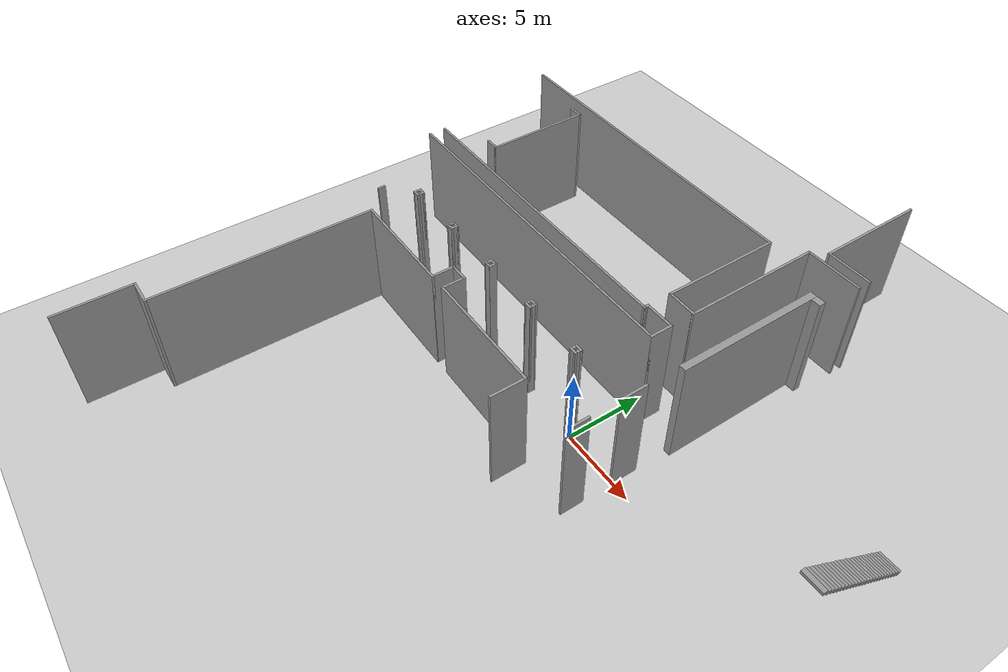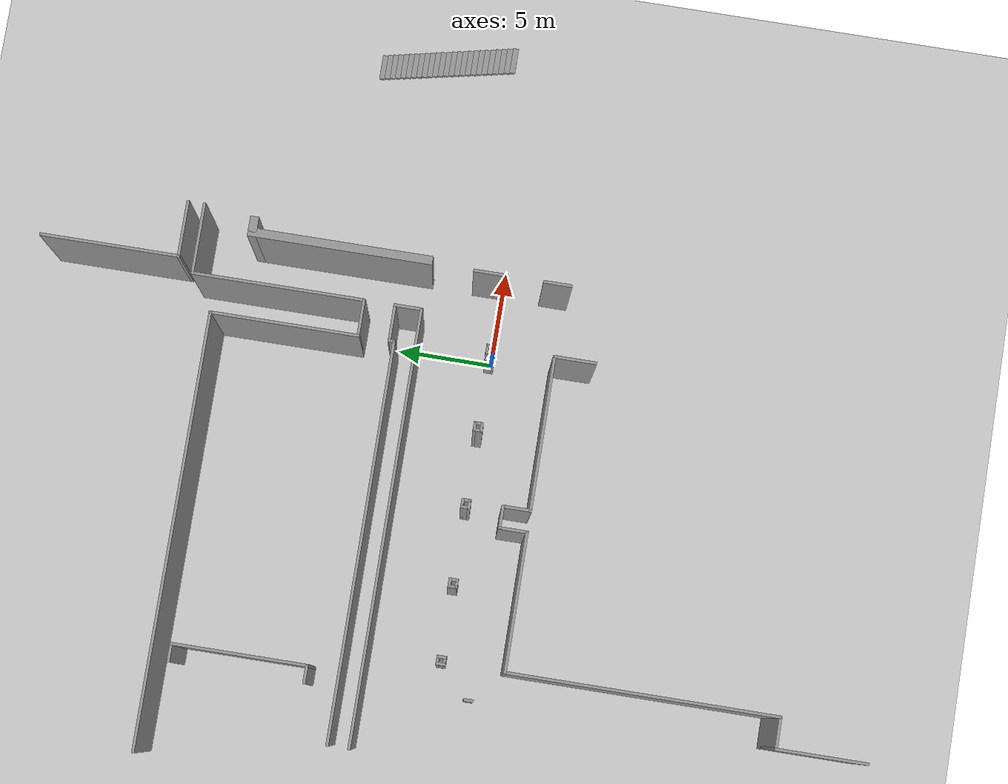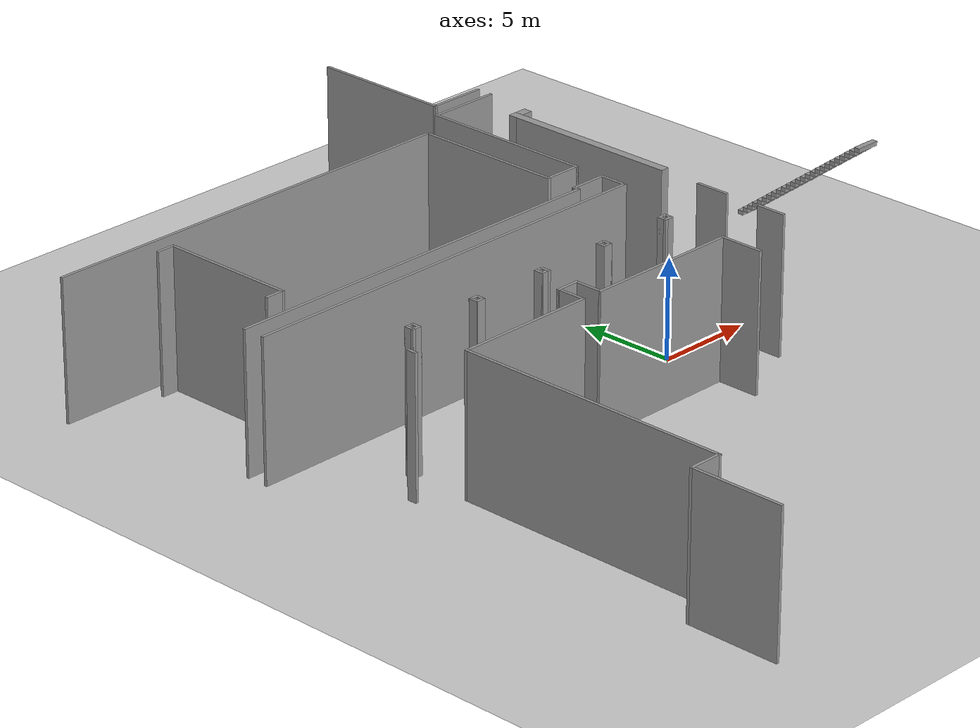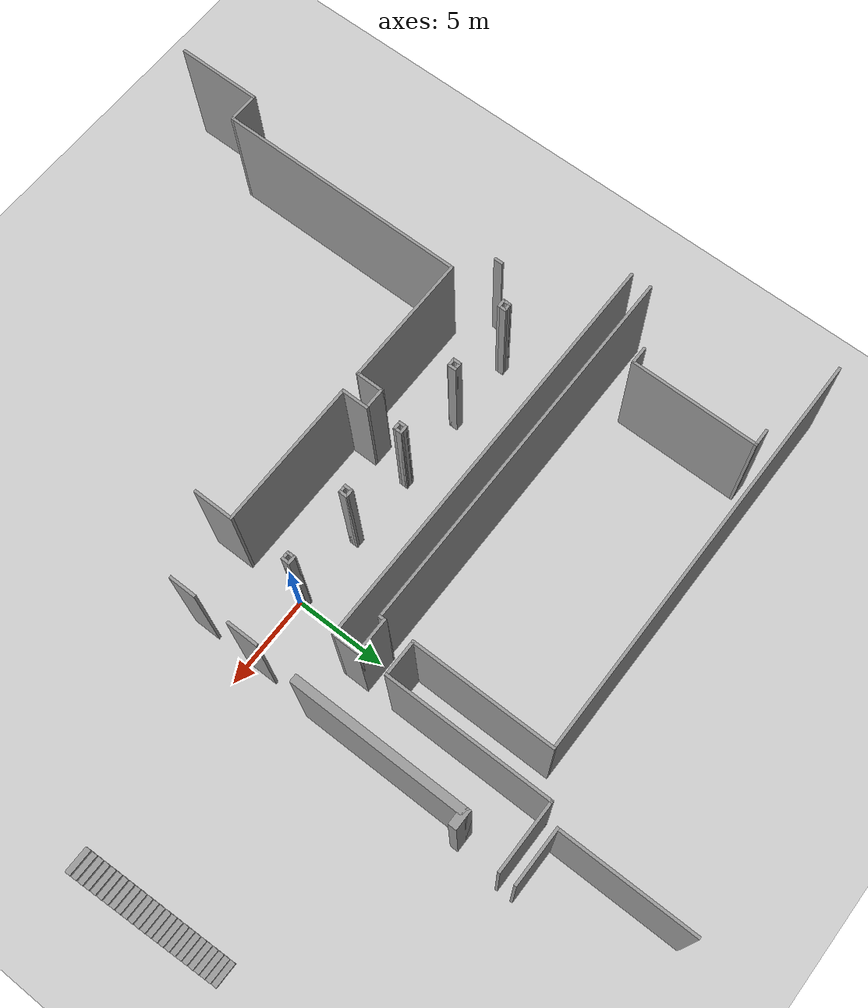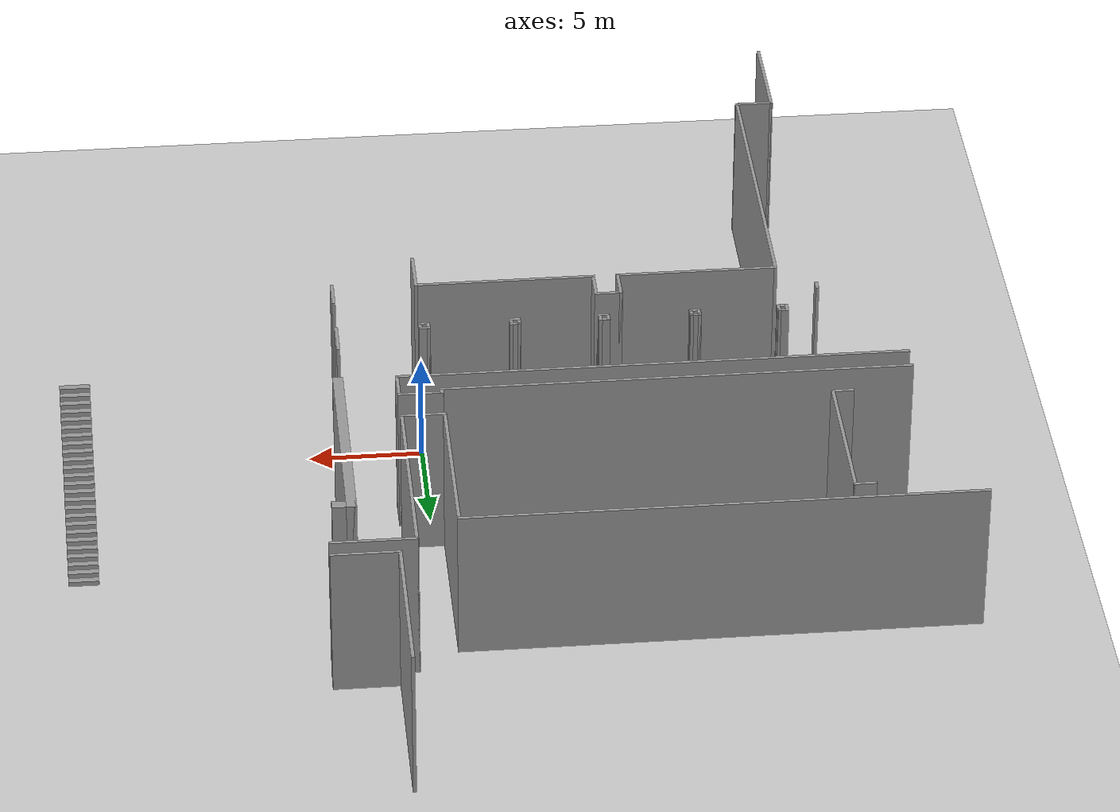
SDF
<sdf version="1.6">
 <world name="default">
  <model name="ground_plane">
   <static>1</static>
   <link name="link">
    <collision name="collision">
     <geometry><plane><normal>0 0 1</normal><size>100 100</size></plane></geometry>
     <surface>
      <contact><collide_bitmask>65535</collide_bitmask></contact>
      <friction><ode><mu>100</mu><mu2>50</mu2></ode></friction>
     </surface>
    </collision>
    <visual name="visual">
     <cast_shadows>0</cast_shadows>
     <geometry><plane><normal>0 0 1</normal><size>100 100</size></plane></geometry>
     <material>
      <script><uri>file://media/materials/scripts/gazebo.material</uri><name>Gazebo/Grey</name></script>
     </material>
    </visual>
   </link>
  </model>
  <model name="mmca">
   <pose>0.137385 4.31033 0 0 -0 0</pose>
   <link name="Stairs_1">
    <visual name="Stairs_1_Visual_0">
     <pose>15.1202 4.02391 0.11 0 -0 0</pose>
     <geometry><box><size>1.32 0.292 0.22</size></box></geometry>
     <material>
      <script><uri>file://media/materials/scripts/gazebo.material</uri><name>Gazebo/Grey</name></script>
      <ambient>1 1 1 1</ambient>
     </material>
     <meta><layer>0</layer></meta>
    </visual>
    <collision name="Stairs_1_Collision_0">
     <geometry><box><size>1.32 0.292 0.22</size></box></geometry>
     <pose>15.1202 4.02391 0.11 0 -0 0</pose>
    </collision>
    <visual name="Stairs_1_Visual_1">
     <pose>15.1202 3.73191 0.33 0 -0 0</pose>
     <geometry><box><size>1.32 0.292 0.22</size></box></geometry>
     <material>
      <script><uri>file://media/materials/scripts/gazebo.material</uri><name>Gazebo/Grey</name></script>
      <ambient>1 1 1 1</ambient>
     </material>
     <meta><layer>0</layer></meta>
    </visual>
    <collision name="Stairs_1_Collision_1">
     <geometry><box><size>1.32 0.292 0.22</size></box></geometry>
     <pose>15.1202 3.73191 0.33 0 -0 0</pose>
    </collision>
    <visual name="Stairs_1_Visual_2">
     <pose>15.1202 3.43991 0.55 0 -0 0</pose>
     <geometry><box><size>1.32 0.292 0.22</size></box></geometry>
     <material>
      <script><uri>file://media/materials/scripts/gazebo.material</uri><name>Gazebo/Grey</name></script>
      <ambient>1 1 1 1</ambient>
     </material>
     <meta><layer>0</layer></meta>
    </visual>
    <collision name="Stairs_1_Collision_2">
     <geometry><box><size>1.32 0.292 0.22</size></box></geometry>
     <pose>15.1202 3.43991 0.55 0 -0 0</pose>
    </collision>
    <visual name="Stairs_1_Visual_3">
     <pose>15.1202 3.14791 0.77 0 -0 0</pose>
     <geometry><box><size>1.32 0.292 0.22</size></box></geometry>
     <material>
      <script><uri>file://media/materials/scripts/gazebo.material</uri><name>Gazebo/Grey</name></script>
      <ambient>1 1 1 1</ambient>
     </material>
     <meta><layer>0</layer></meta>
    </visual>
    <collision name="Stairs_1_Collision_3">
     <geometry><box><size>1.32 0.292 0.22</size></box></geometry>
     <pose>15.1202 3.14791 0.77 0 -0 0</pose>
    </collision>
    <visual name="Stairs_1_Visual_4">
     <pose>15.1202 2.85591 0.99 0 -0 0</pose>
     <geometry><box><size>1.32 0.292 0.22</size></box></geometry>
     <material>
      <script><uri>file://media/materials/scripts/gazebo.material</uri><name>Gazebo/Grey</name></script>
      <ambient>1 1 1 1</ambient>
     </material>
     <meta><layer>0</layer></meta>
    </visual>
    <collision name="Stairs_1_Collision_4">
     <geometry><box><size>1.32 0.292 0.22</size></box></geometry>
     <pose>15.1202 2.85591 0.99 0 -0 0</pose>
    </collision>
    <visual name="Stairs_1_Visual_5">
     <pose>15.1202 2.56391 1.21 0 -0 0</pose>
     <geometry><box><size>1.32 0.292 0.22</size></box></geometry>
     <material>
      <script><uri>file://media/materials/scripts/gazebo.material</uri><name>Gazebo/Grey</name></script>
      <ambient>1 1 1 1</ambient>
     </material>
     <meta><layer>0</layer></meta>
    </visual>
    <collision name="Stairs_1_Collision_5">
     <geometry><box><size>1.32 0.292 0.22</size></box></geometry>
     <pose>15.1202 2.56391 1.21 0 -0 0</pose>
    </collision>
    <visual name="Stairs_1_Visual_6">
     <pose>15.1202 2.27191 1.43 0 -0 0</pose>
     <geometry><box><size>1.32 0.292 0.22</size></box></geometry>
     <material>
      <script><uri>file://media/materials/scripts/gazebo.material</uri><name>Gazebo/Grey</name></script>
      <ambient>1 1 1 1</ambient>
     </material>
     <meta><layer>0</layer></meta>
    </visual>
    <collision name="Stairs_1_Collision_6">
     <geometry><box><size>1.32 0.292 0.22</size></box></geometry>
     <pose>15.1202 2.27191 1.43 0 -0 0</pose>
    </collision>
    <visual name="Stairs_1_Visual_7">
     <pose>15.1202 1.97991 1.65 0 -0 0</pose>
     <geometry><box><size>1.32 0.292 0.22</size></box></geometry>
     <material>
      <script><uri>file://media/materials/scripts/gazebo.material</uri><name>Gazebo/Grey</name></script>
      <ambient>1 1 1 1</ambient>
     </material>
     <meta><layer>0</layer></meta>
    </visual>
    <collision name="Stairs_1_Collision_7">
     <geometry><box><size>1.32 0.292 0.22</size></box></geometry>
     <pose>15.1202 1.97991 1.65 0 -0 0</pose>
    </collision>
    <visual name="Stairs_1_Visual_8">
     <pose>15.1202 1.68791 1.87 0 -0 0</pose>
     <geometry><box><size>1.32 0.292 0.22</size></box></geometry>
     <material>
      <script><uri>file://media/materials/scripts/gazebo.material</uri><name>Gazebo/Grey</name></script>
      <ambient>1 1 1 1</ambient>
     </material>
     <meta><layer>0</layer></meta>
    </visual>
    <collision name="Stairs_1_Collision_8">
     <geometry><box><size>1.32 0.292 0.22</size></box></geometry>
     <pose>15.1202 1.68791 1.87 0 -0 0</pose>
    </collision>
    <visual name="Stairs_1_Visual_9">
     <pose>15.1202 1.39591 2.09 0 -0 0</pose>
     <geometry><box><size>1.32 0.292 0.22</size></box></geometry>
     <material>
      <script><uri>file://media/materials/scripts/gazebo.material</uri><name>Gazebo/Grey</name></script>
      <ambient>1 1 1 1</ambient>
     </material>
     <meta><layer>0</layer></meta>
    </visual>
    <collision name="Stairs_1_Collision_9">
     <geometry><box><size>1.32 0.292 0.22</size></box></geometry>
     <pose>15.1202 1.39591 2.09 0 -0 0</pose>
    </collision>
    <visual name="Stairs_1_Visual_10">
     <pose>15.1202 1.10391 2.31 0 -0 0</pose>
     <geometry><box><size>1.32 0.292 0.22</size></box></geometry>
     <material>
      <script><uri>file://media/materials/scripts/gazebo.material</uri><name>Gazebo/Grey</name></script>
      <ambient>1 1 1 1</ambient>
     </material>
     <meta><layer>0</layer></meta>
    </visual>
    <collision name="Stairs_1_Collision_10">
     <geometry><box><size>1.32 0.292 0.22</size></box></geometry>
     <pose>15.1202 1.10391 2.31 0 -0 0</pose>
    </collision>
    <visual name="Stairs_1_Visual_11">
     <pose>15.1202 0.811911 2.53 0 -0 0</pose>
     <geometry><box><size>1.32 0.292 0.22</size></box></geometry>
     <material>
      <script><uri>file://media/materials/scripts/gazebo.material</uri><name>Gazebo/Grey</name></script>
      <ambient>1 1 1 1</ambient>
     </material>
     <meta><layer>0</layer></meta>
    </visual>
    <collision name="Stairs_1_Collision_11">
     <geometry><box><size>1.32 0.292 0.22</size></box></geometry>
     <pose>15.1202 0.811911 2.53 0 -0 0</pose>
    </collision>
    <visual name="Stairs_1_Visual_12">
     <pose>15.1202 0.519911 2.75 0 -0 0</pose>
     <geometry><box><size>1.32 0.292 0.22</size></box></geometry>
     <material>
      <script><uri>file://media/materials/scripts/gazebo.material</uri><name>Gazebo/Grey</name></script>
      <ambient>1 1 1 1</ambient>
     </material>
     <meta><layer>0</layer></meta>
    </visual>
    <collision name="Stairs_1_Collision_12">
     <geometry><box><size>1.32 0.292 0.22</size></box></geometry>
     <pose>15.1202 0.519911 2.75 0 -0 0</pose>
    </collision>
    <visual name="Stairs_1_Visual_13">
     <pose>15.1202 0.227911 2.97 0 -0 0</pose>
     <geometry><box><size>1.32 0.292 0.22</size></box></geometry>
     <material>
      <script><uri>file://media/materials/scripts/gazebo.material</uri><name>Gazebo/Grey</name></script>
      <ambient>1 1 1 1</ambient>
     </material>
     <meta><layer>0</layer></meta>
    </visual>
    <collision name="Stairs_1_Collision_13">
     <geometry><box><size>1.32 0.292 0.22</size></box></geometry>
     <pose>15.1202 0.227911 2.97 0 -0 0</pose>
    </collision>
    <visual name="Stairs_1_Visual_14">
     <pose>15.1202 -0.064089 3.19 0 -0 0</pose>
     <geometry><box><size>1.32 0.292 0.22</size></box></geometry>
     <material>
      <script><uri>file://media/materials/scripts/gazebo.material</uri><name>Gazebo/Grey</name></script>
      <ambient>1 1 1 1</ambient>
     </material>
     <meta><layer>0</layer></meta>
    </visual>
    <collision name="Stairs_1_Collision_14">
     <geometry><box><size>1.32 0.292 0.22</size></box></geometry>
     <pose>15.1202 -0.064089 3.19 0 -0 0</pose>
    </collision>
    <visual name="Stairs_1_Visual_15">
     <pose>15.1202 -0.356089 3.41 0 -0 0</pose>
     <geometry><box><size>1.32 0.292 0.22</size></box></geometry>
     <material>
      <script><uri>file://media/materials/scripts/gazebo.material</uri><name>Gazebo/Grey</name></script>
      <ambient>1 1 1 1</ambient>
     </material>
     <meta><layer>0</layer></meta>
    </visual>
    <collision name="Stairs_1_Collision_15">
     <geometry><box><size>1.32 0.292 0.22</size></box></geometry>
     <pose>15.1202 -0.356089 3.41 0 -0 0</pose>
    </collision>
    <visual name="Stairs_1_Visual_16">
     <pose>15.1202 -0.648088 3.63 0 -0 0</pose>
     <geometry><box><size>1.32 0.292 0.22</size></box></geometry>
     <material>
      <script><uri>file://media/materials/scripts/gazebo.material</uri><name>Gazebo/Grey</name></script>
      <ambient>1 1 1 1</ambient>
     </material>
     <meta><layer>0</layer></meta>
    </visual>
    <collision name="Stairs_1_Collision_16">
     <geometry><box><size>1.32 0.292 0.22</size></box></geometry>
     <pose>15.1202 -0.648088 3.63 0 -0 0</pose>
    </collision>
    <visual name="Stairs_1_Visual_17">
     <pose>15.1202 -0.940089 3.85 0 -0 0</pose>
     <geometry><box><size>1.32 0.292 0.22</size></box></geometry>
     <material>
      <script><uri>file://media/materials/scripts/gazebo.material</uri><name>Gazebo/Grey</name></script>
      <ambient>1 1 1 1</ambient>
     </material>
     <meta><layer>0</layer></meta>
    </visual>
    <collision name="Stairs_1_Collision_17">
     <geometry><box><size>1.32 0.292 0.22</size></box></geometry>
     <pose>15.1202 -0.940089 3.85 0 -0 0</pose>
    </collision>
    <visual name="Stairs_1_Visual_18">
     <pose>15.1202 -1.23209 4.07 0 -0 0</pose>
     <geometry><box><size>1.32 0.292 0.22</size></box></geometry>
     <material>
      <script><uri>file://media/materials/scripts/gazebo.material</uri><name>Gazebo/Grey</name></script>
      <ambient>1 1 1 1</ambient>
     </material>
     <meta><layer>0</layer></meta>
    </visual>
    <collision name="Stairs_1_Collision_18">
     <geometry><box><size>1.32 0.292 0.22</size></box></geometry>
     <pose>15.1202 -1.23209 4.07 0 -0 0</pose>
    </collision>
    <visual name="Stairs_1_Visual_19">
     <pose>15.1202 -1.52409 4.29 0 -0 0</pose>
     <geometry><box><size>1.32 0.292 0.22</size></box></geometry>
     <material>
      <script><uri>file://media/materials/scripts/gazebo.material</uri><name>Gazebo/Grey</name></script>
      <ambient>1 1 1 1</ambient>
     </material>
     <meta><layer>0</layer></meta>
    </visual>
    <collision name="Stairs_1_Collision_19">
     <geometry><box><size>1.32 0.292 0.22</size></box></geometry>
     <pose>15.1202 -1.52409 4.29 0 -0 0</pose>
    </collision>
    <visual name="Stairs_1_Visual_20">
     <pose>15.1202 -1.81609 4.51 0 -0 0</pose>
     <geometry><box><size>1.32 0.292 0.22</size></box></geometry>
     <material>
      <script><uri>file://media/materials/scripts/gazebo.material</uri><name>Gazebo/Grey</name></script>
      <ambient>1 1 1 1</ambient>
     </material>
     <meta><layer>0</layer></meta>
    </visual>
    <collision name="Stairs_1_Collision_20">
     <geometry><box><size>1.32 0.292 0.22</size></box></geometry>
     <pose>15.1202 -1.81609 4.51 0 -0 0</pose>
    </collision>
    <visual name="Stairs_1_Visual_21">
     <pose>15.1202 -2.10809 4.73 0 -0 0</pose>
     <geometry><box><size>1.32 0.292 0.22</size></box></geometry>
     <material>
      <script><uri>file://media/materials/scripts/gazebo.material</uri><name>Gazebo/Grey</name></script>
      <ambient>1 1 1 1</ambient>
     </material>
     <meta><layer>0</layer></meta>
    </visual>
    <collision name="Stairs_1_Collision_21">
     <geometry><box><size>1.32 0.292 0.22</size></box></geometry>
     <pose>15.1202 -2.10809 4.73 0 -0 0</pose>
    </collision>
    <visual name="Stairs_1_Visual_22">
     <pose>15.1202 -2.40009 4.95 0 -0 0</pose>
     <geometry><box><size>1.32 0.292 0.22</size></box></geometry>
     <material>
      <script><uri>file://media/materials/scripts/gazebo.material</uri><name>Gazebo/Grey</name></script>
      <ambient>1 1 1 1</ambient>
     </material>
     <meta><layer>0</layer></meta>
    </visual>
    <collision name="Stairs_1_Collision_22">
     <geometry><box><size>1.32 0.292 0.22</size></box></geometry>
     <pose>15.1202 -2.40009 4.95 0 -0 0</pose>
    </collision>
    <visual name="Stairs_1_Visual_23">
     <pose>15.1202 -2.69209 5.17 0 -0 0</pose>
     <geometry><box><size>1.32 0.292 0.22</size></box></geometry>
     <material>
      <script><uri>file://media/materials/scripts/gazebo.material</uri><name>Gazebo/Grey</name></script>
      <ambient>1 1 1 1</ambient>
     </material>
     <meta><layer>0</layer></meta>
    </visual>
    <collision name="Stairs_1_Collision_23">
     <geometry><box><size>1.32 0.292 0.22</size></box></geometry>
     <pose>15.1202 -2.69209 5.17 0 -0 0</pose>
    </collision>
    <visual name="Stairs_1_Visual_24">
     <pose>15.1202 -2.98409 5.39 0 -0 0</pose>
     <geometry><box><size>1.32 0.292 0.22</size></box></geometry>
     <material>
      <script><uri>file://media/materials/scripts/gazebo.material</uri><name>Gazebo/Grey</name></script>
      <ambient>1 1 1 1</ambient>
     </material>
     <meta><layer>0</layer></meta>
    </visual>
    <collision name="Stairs_1_Collision_24">
     <geometry><box><size>1.32 0.292 0.22</size></box></geometry>
     <pose>15.1202 -2.98409 5.39 0 -0 0</pose>
    </collision>
   </link>
   <link name="Wall_119">
    <collision name="Wall_119_Collision">
     <geometry><box><size>1.75 0.15 7</size></box></geometry>
     <pose>0 0 3.5 0 -0 0</pose>
    </collision>
    <visual name="Wall_119_Visual">
     <pose>0 0 3.5 0 -0 0</pose>
     <geometry><box><size>1.75 0.15 7</size></box></geometry>
     <material>
      <script><uri>file://media/materials/scripts/gazebo.material</uri><name>Gazebo/Grey</name></script>
      <ambient>1 1 1 1</ambient>
     </material>
     <meta><layer>0</layer></meta>
    </visual>
    <pose>3.5775 -3.5445 0 0 -0 -1.5708</pose>
   </link>
   <link name="Wall_127">
    <collision name="Wall_127_Collision">
     <geometry><box><size>1.5 0.15 7</size></box></geometry>
     <pose>0 0 3.5 0 -0 0</pose>
    </collision>
    <visual name="Wall_127_Visual">
     <pose>0 0 3.5 0 -0 0</pose>
     <geometry><box><size>1.5 0.15 7</size></box></geometry>
     <material>
      <script><uri>file://media/materials/scripts/gazebo.material</uri><name>Gazebo/Grey</name></script>
      <ambient>1 1 1 1</ambient>
     </material>
     <meta><layer>0</layer></meta>
    </visual>
    <pose>3.5625 -7.0195 0 0 -0 1.5708</pose>
   </link>
   <link name="Wall_129">
    <collision name="Wall_129_Collision">
     <geometry><box><size>9.55 0.45 7</size></box></geometry>
     <pose>0 0 3.5 0 -0 0</pose>
    </collision>
    <visual name="Wall_129_Visual">
     <pose>0 0 3.5 0 -0 0</pose>
     <geometry><box><size>9.55 0.45 7</size></box></geometry>
     <material>
      <script><uri>file://media/materials/scripts/gazebo.material</uri><name>Gazebo/Grey</name></script>
      <ambient>1 1 1 1</ambient>
     </material>
     <meta><layer>0</layer></meta>
    </visual>
    <pose>3.7355 4.2315 0 0 -0 1.5708</pose>
   </link>
   <link name="Wall_131">
    <collision name="Wall_131_Collision">
     <geometry><box><size>1.05014 0.45 7</size></box></geometry>
     <pose>0 0 3.5 0 -0 0</pose>
    </collision>
    <visual name="Wall_131_Visual">
     <pose>0 0 3.5 0 -0 0</pose>
     <geometry><box><size>1.05014 0.45 7</size></box></geometry>
     <material>
      <script><uri>file://media/materials/scripts/gazebo.material</uri><name>Gazebo/Grey</name></script>
      <ambient>1 1 1 1</ambient>
     </material>
     <meta><layer>0</layer></meta>
    </visual>
    <pose>4.0355 8.7815 0 0 -0 0</pose>
   </link>
   <link name="Wall_182">
    <collision name="Wall_182_Collision">
     <geometry><box><size>9 0.15 7</size></box></geometry>
     <pose>0 0 3.5 0 -0 0</pose>
    </collision>
    <visual name="Wall_182_Visual">
     <pose>0 0 3.5 0 -0 0</pose>
     <geometry><box><size>9 0.15 7</size></box></geometry>
     <material>
      <script><uri>file://media/materials/scripts/gazebo.material</uri><name>Gazebo/Grey</name></script>
      <ambient>1 1 1 1</ambient>
     </material>
     <meta><layer>0</layer></meta>
    </visual>
    <pose>1.1735 7.0015 0 0 -0 1.5708</pose>
   </link>
   <link name="Wall_183">
    <collision name="Wall_183_Collision">
     <geometry><box><size>3.75 0.15 7</size></box></geometry>
     <pose>0 0 3.5 0 -0 0</pose>
    </collision>
    <visual name="Wall_183_Visual">
     <pose>0 0 3.5 0 -0 0</pose>
     <geometry><box><size>3.75 0.15 7</size></box></geometry>
     <material>
      <script><uri>file://media/materials/scripts/gazebo.material</uri><name>Gazebo/Grey</name></script>
      <ambient>1 1 1 1</ambient>
     </material>
     <meta><layer>0</layer></meta>
    </visual>
    <pose>2.9735 11.4265 0 0 -0 0</pose>
   </link>
   <link name="Wall_185">
    <collision name="Wall_185_Collision">
     <geometry><box><size>3 0.15 7</size></box></geometry>
     <pose>0 0 3.5 0 -0 0</pose>
    </collision>
    <visual name="Wall_185_Visual">
     <pose>0 0 3.5 0 -0 0</pose>
     <geometry><box><size>3 0.15 7</size></box></geometry>
     <material>
      <script><uri>file://media/materials/scripts/gazebo.material</uri><name>Gazebo/Grey</name></script>
      <ambient>1 1 1 1</ambient>
     </material>
     <meta><layer>0</layer></meta>
    </visual>
    <pose>3.3485 12.2765 0 0 -0 3.14159</pose>
   </link>
   <link name="Wall_186">
    <collision name="Wall_186_Collision">
     <geometry><box><size>7.25 0.15 7</size></box></geometry>
     <pose>0 0 3.5 0 -0 0</pose>
    </collision>
    <visual name="Wall_186_Visual">
     <pose>0 0 3.5 0 -0 0</pose>
     <geometry><box><size>7.25 0.15 7</size></box></geometry>
     <material>
      <script><uri>file://media/materials/scripts/gazebo.material</uri><name>Gazebo/Grey</name></script>
      <ambient>1 1 1 1</ambient>
     </material>
     <meta><layer>0</layer></meta>
    </visual>
    <pose>1.9235 15.8265 0 0 -0 1.5708</pose>
   </link>
   <link name="Wall_251">
    <collision name="Wall_251_Collision">
     <geometry><box><size>0.4 0.15 7</size></box></geometry>
     <pose>0 0 3.5 0 -0 0</pose>
    </collision>
    <visual name="Wall_251_Visual">
     <pose>0 0 3.5 0 -0 0</pose>
     <geometry><box><size>0.4 0.15 7</size></box></geometry>
     <material>
      <script><uri>file://media/materials/scripts/gazebo.material</uri><name>Gazebo/Grey</name></script>
      <ambient>1 1 1 1</ambient>
     </material>
     <meta><layer>0</layer></meta>
    </visual>
    <pose>-0.6765 0.851499 0 0 -0 -1.5708</pose>
   </link>
   <link name="Wall_255">
    <collision name="Wall_255_Collision">
     <geometry><box><size>20.65 0.15 7</size></box></geometry>
     <pose>0 0 3.5 0 -0 0</pose>
    </collision>
    <visual name="Wall_255_Visual">
     <pose>0 0 3.5 0 -0 0</pose>
     <geometry><box><size>20.65 0.15 7</size></box></geometry>
     <material>
      <script><uri>file://media/materials/scripts/gazebo.material</uri><name>Gazebo/Grey</name></script>
      <ambient>1 1 1 1</ambient>
     </material>
     <meta><layer>0</layer></meta>
    </visual>
    <pose>-10.9265 0.726499 0 0 -0 0</pose>
   </link>
   <link name="Wall_26">
    <collision name="Wall_26_Collision">
     <geometry><box><size>2.25 0.15 7</size></box></geometry>
     <pose>0 0 3.5 0 -0 0</pose>
    </collision>
    <visual name="Wall_26_Visual">
     <pose>0 0 3.5 0 -0 0</pose>
     <geometry><box><size>2.25 0.15 7</size></box></geometry>
     <material>
      <script><uri>file://media/materials/scripts/gazebo.material</uri><name>Gazebo/Grey</name></script>
      <ambient>1 1 1 1</ambient>
     </material>
     <meta><layer>0</layer></meta>
    </visual>
    <pose>-0.1585 -8.4765 0 0 -0 -1.5708</pose>
   </link>
   <link name="Wall_267">
    <collision name="Wall_267_Collision">
     <geometry><box><size>22.5 0.15 7</size></box></geometry>
     <pose>0 0 3.5 0 -0 0</pose>
    </collision>
    <visual name="Wall_267_Visual">
     <pose>0 0 3.5 0 -0 0</pose>
     <geometry><box><size>22.5 0.15 7</size></box></geometry>
     <material>
      <script><uri>file://media/materials/scripts/gazebo.material</uri><name>Gazebo/Grey</name></script>
      <ambient>1 1 1 1</ambient>
     </material>
     <meta><layer>0</layer></meta>
    </visual>
    <pose>-11.8515 10.1765 0 0 -0 0</pose>
   </link>
   <link name="Wall_268">
    <collision name="Wall_268_Collision">
     <geometry><box><size>7.75 0.15 7</size></box></geometry>
     <pose>0 0 3.5 0 -0 0</pose>
    </collision>
    <visual name="Wall_268_Visual">
     <pose>0 0 3.5 0 -0 0</pose>
     <geometry><box><size>7.75 0.15 7</size></box></geometry>
     <material>
      <script><uri>file://media/materials/scripts/gazebo.material</uri><name>Gazebo/Grey</name></script>
      <ambient>1 1 1 1</ambient>
     </material>
     <meta><layer>0</layer></meta>
    </visual>
    <pose>-0.6765 6.3765 0 0 -0 -1.5708</pose>
   </link>
   <link name="Wall_271">
    <collision name="Wall_271_Collision">
     <geometry><box><size>1 0.15 7</size></box></geometry>
     <pose>0 0 3.5 0 -0 0</pose>
    </collision>
    <visual name="Wall_271_Visual">
     <pose>0 0 3.5 0 -0 0</pose>
     <geometry><box><size>1 0.15 7</size></box></geometry>
     <material>
      <script><uri>file://media/materials/scripts/gazebo.material</uri><name>Gazebo/Grey</name></script>
      <ambient>1 1 1 1</ambient>
     </material>
     <meta><layer>0</layer></meta>
    </visual>
    <pose>-17.9065 2.3715 0 0 -0 0</pose>
   </link>
   <link name="Wall_272">
    <collision name="Wall_272_Collision">
     <geometry><box><size>7 0.15 7</size></box></geometry>
     <pose>0 0 3.5 0 -0 0</pose>
    </collision>
    <visual name="Wall_272_Visual">
     <pose>0 0 3.5 0 -0 0</pose>
     <geometry><box><size>7 0.15 7</size></box></geometry>
     <material>
      <script><uri>file://media/materials/scripts/gazebo.material</uri><name>Gazebo/Grey</name></script>
      <ambient>1 1 1 1</ambient>
     </material>
     <meta><layer>0</layer></meta>
    </visual>
    <pose>-17.4815 5.7965 0 0 -0 1.5708</pose>
   </link>
   <link name="Wall_273">
    <collision name="Wall_273_Collision">
     <geometry><box><size>1 0.15 7</size></box></geometry>
     <pose>0 0 3.5 0 -0 0</pose>
    </collision>
    <visual name="Wall_273_Visual">
     <pose>0 0 3.5 0 -0 0</pose>
     <geometry><box><size>1 0.15 7</size></box></geometry>
     <material>
      <script><uri>file://media/materials/scripts/gazebo.material</uri><name>Gazebo/Grey</name></script>
      <ambient>1 1 1 1</ambient>
     </material>
     <meta><layer>0</layer></meta>
    </visual>
    <pose>-17.9065 9.2215 0 0 -0 3.14159</pose>
   </link>
   <link name="Wall_275">
    <collision name="Wall_275_Collision">
     <geometry><box><size>1.5 0.15 7</size></box></geometry>
     <pose>0 0 3.5 0 -0 0</pose>
    </collision>
    <visual name="Wall_275_Visual">
     <pose>0 0 3.5 0 -0 0</pose>
     <geometry><box><size>1.5 0.15 7</size></box></geometry>
     <material>
      <script><uri>file://media/materials/scripts/gazebo.material</uri><name>Gazebo/Grey</name></script>
      <ambient>1 1 1 1</ambient>
     </material>
     <meta><layer>0</layer></meta>
    </visual>
    <pose>-9.1755 -6.7095 0 0 -0 1.5708</pose>
   </link>
   <link name="Wall_276">
    <collision name="Wall_276_Collision">
     <geometry><box><size>1.25 0.15 7</size></box></geometry>
     <pose>0 0 3.5 0 -0 0</pose>
    </collision>
    <visual name="Wall_276_Visual">
     <pose>0 0 3.5 0 -0 0</pose>
     <geometry><box><size>1.25 0.15 7</size></box></geometry>
     <material>
      <script><uri>file://media/materials/scripts/gazebo.material</uri><name>Gazebo/Grey</name></script>
      <ambient>1 1 1 1</ambient>
     </material>
     <meta><layer>0</layer></meta>
    </visual>
    <pose>-8.6255 -6.0345 0 0 -0 0</pose>
   </link>
   <link name="Wall_277">
    <collision name="Wall_277_Collision">
     <geometry><box><size>1.5 0.15 7</size></box></geometry>
     <pose>0 0 3.5 0 -0 0</pose>
    </collision>
    <visual name="Wall_277_Visual">
     <pose>0 0 3.5 0 -0 0</pose>
     <geometry><box><size>1.5 0.15 7</size></box></geometry>
     <material>
      <script><uri>file://media/materials/scripts/gazebo.material</uri><name>Gazebo/Grey</name></script>
      <ambient>1 1 1 1</ambient>
     </material>
     <meta><layer>0</layer></meta>
    </visual>
    <pose>-8.0755 -6.7095 0 0 -0 -1.5708</pose>
   </link>
   <link name="Wall_283">
    <collision name="Wall_283_Collision">
     <geometry><box><size>8.067 0.15 7</size></box></geometry>
     <pose>0 0 3.5 0 -0 0</pose>
    </collision>
    <visual name="Wall_283_Visual">
     <pose>0 0 3.5 0 -0 0</pose>
     <geometry><box><size>8.067 0.15 7</size></box></geometry>
     <material>
      <script><uri>file://media/materials/scripts/gazebo.material</uri><name>Gazebo/Grey</name></script>
      <ambient>1 1 1 1</ambient>
     </material>
     <meta><layer>0</layer></meta>
    </visual>
    <pose>-4.117 -7.4265 0 0 -0 3.14159</pose>
   </link>
   <link name="Wall_291">
    <collision name="Wall_291_Collision">
     <geometry><box><size>7.233 0.15 7</size></box></geometry>
     <pose>0 0 3.5 0 -0 0</pose>
    </collision>
    <visual name="Wall_291_Visual">
     <pose>0 0 3.5 0 -0 0</pose>
     <geometry><box><size>7.233 0.15 7</size></box></geometry>
     <material>
      <script><uri>file://media/materials/scripts/gazebo.material</uri><name>Gazebo/Grey</name></script>
      <ambient>1 1 1 1</ambient>
     </material>
     <meta><layer>0</layer></meta>
    </visual>
    <pose>-12.717 -7.4265 0 0 -0 0</pose>
   </link>
   <link name="Wall_335">
    <collision name="Wall_335_Collision">
     <geometry><box><size>0.5 0.15 7</size></box></geometry>
     <pose>0 0 3.5 0 -0 0</pose>
    </collision>
    <visual name="Wall_335_Visual">
     <pose>0 0 3.5 0 -0 0</pose>
     <geometry><box><size>0.5 0.15 7</size></box></geometry>
     <material>
      <script><uri>file://media/materials/scripts/gazebo.material</uri><name>Gazebo/Grey</name></script>
      <ambient>1 1 1 1</ambient>
     </material>
     <meta><layer>0</layer></meta>
    </visual>
    <pose>-17.9065 -5.8495 0 0 -0 -1.5708</pose>
   </link>
   <link name="Wall_339">
    <collision name="Wall_339_Collision">
     <geometry><box><size>0.5 0.15 7</size></box></geometry>
     <pose>0 0 3.5 0 -0 0</pose>
    </collision>
    <visual name="Wall_339_Visual">
     <pose>0 0 3.5 0 -0 0</pose>
     <geometry><box><size>0.5 0.15 7</size></box></geometry>
     <material>
      <script><uri>file://media/materials/scripts/gazebo.material</uri><name>Gazebo/Grey</name></script>
      <ambient>1 1 1 1</ambient>
     </material>
     <meta><layer>0</layer></meta>
    </visual>
    <pose>-16.3455 -4.1905 0 0 -0 1.5708</pose>
   </link>
   <link name="Wall_340">
    <collision name="Wall_340_Collision">
     <geometry><box><size>0.5 0.15 7</size></box></geometry>
     <pose>0 0 3.5 0 -0 0</pose>
    </collision>
    <visual name="Wall_340_Visual">
     <pose>0 0 3.5 0 -0 0</pose>
     <geometry><box><size>0.5 0.15 7</size></box></geometry>
     <material>
      <script><uri>file://media/materials/scripts/gazebo.material</uri><name>Gazebo/Grey</name></script>
      <ambient>1 1 1 1</ambient>
     </material>
     <meta><layer>0</layer></meta>
    </visual>
    <pose>-16.1705 -4.0155 0 0 -0 0</pose>
   </link>
   <link name="Wall_341">
    <collision name="Wall_341_Collision">
     <geometry><box><size>0.5 0.15 7</size></box></geometry>
     <pose>0 0 3.5 0 -0 0</pose>
    </collision>
    <visual name="Wall_341_Visual">
     <pose>0 0 3.5 0 -0 0</pose>
     <geometry><box><size>0.5 0.15 7</size></box></geometry>
     <material>
      <script><uri>file://media/materials/scripts/gazebo.material</uri><name>Gazebo/Grey</name></script>
      <ambient>1 1 1 1</ambient>
     </material>
     <meta><layer>0</layer></meta>
    </visual>
    <pose>-15.9955 -4.1905 0 0 -0 -1.5708</pose>
   </link>
   <link name="Wall_342">
    <collision name="Wall_342_Collision">
     <geometry><box><size>0.5 0.15 7</size></box></geometry>
     <pose>0 0 3.5 0 -0 0</pose>
    </collision>
    <visual name="Wall_342_Visual">
     <pose>0 0 3.5 0 -0 0</pose>
     <geometry><box><size>0.5 0.15 7</size></box></geometry>
     <material>
      <script><uri>file://media/materials/scripts/gazebo.material</uri><name>Gazebo/Grey</name></script>
      <ambient>1 1 1 1</ambient>
     </material>
     <meta><layer>0</layer></meta>
    </visual>
    <pose>-16.1705 -4.3655 0 0 -0 3.14159</pose>
   </link>
   <link name="Wall_344">
    <collision name="Wall_344_Collision">
     <geometry><box><size>0.5 0.15 7</size></box></geometry>
     <pose>0 0 3.5 0 -0 0</pose>
    </collision>
    <visual name="Wall_344_Visual">
     <pose>0 0 3.5 0 -0 0</pose>
     <geometry><box><size>0.5 0.15 7</size></box></geometry>
     <material>
      <script><uri>file://media/materials/scripts/gazebo.material</uri><name>Gazebo/Grey</name></script>
      <ambient>1 1 1 1</ambient>
     </material>
     <meta><layer>0</layer></meta>
    </visual>
    <pose>-12.2805 -3.9925 0 0 -0 0</pose>
   </link>
   <link name="Wall_345">
    <collision name="Wall_345_Collision">
     <geometry><box><size>0.5 0.15 7</size></box></geometry>
     <pose>0 0 3.5 0 -0 0</pose>
    </collision>
    <visual name="Wall_345_Visual">
     <pose>0 0 3.5 0 -0 0</pose>
     <geometry><box><size>0.5 0.15 7</size></box></geometry>
     <material>
      <script><uri>file://media/materials/scripts/gazebo.material</uri><name>Gazebo/Grey</name></script>
      <ambient>1 1 1 1</ambient>
     </material>
     <meta><layer>0</layer></meta>
    </visual>
    <pose>-12.1055 -4.1675 0 0 -0 -1.5708</pose>
   </link>
   <link name="Wall_346">
    <collision name="Wall_346_Collision">
     <geometry><box><size>0.5 0.15 7</size></box></geometry>
     <pose>0 0 3.5 0 -0 0</pose>
    </collision>
    <visual name="Wall_346_Visual">
     <pose>0 0 3.5 0 -0 0</pose>
     <geometry><box><size>0.5 0.15 7</size></box></geometry>
     <material>
      <script><uri>file://media/materials/scripts/gazebo.material</uri><name>Gazebo/Grey</name></script>
      <ambient>1 1 1 1</ambient>
     </material>
     <meta><layer>0</layer></meta>
    </visual>
    <pose>-12.2805 -4.3425 0 0 -0 3.14159</pose>
   </link>
   <link name="Wall_347">
    <collision name="Wall_347_Collision">
     <geometry><box><size>0.5 0.15 7</size></box></geometry>
     <pose>0 0 3.5 0 -0 0</pose>
    </collision>
    <visual name="Wall_347_Visual">
     <pose>0 0 3.5 0 -0 0</pose>
     <geometry><box><size>0.5 0.15 7</size></box></geometry>
     <material>
      <script><uri>file://media/materials/scripts/gazebo.material</uri><name>Gazebo/Grey</name></script>
      <ambient>1 1 1 1</ambient>
     </material>
     <meta><layer>0</layer></meta>
    </visual>
    <pose>-12.4555 -4.1675 0 0 -0 1.5708</pose>
   </link>
   <link name="Wall_349">
    <collision name="Wall_349_Collision">
     <geometry><box><size>0.5 0.15 7</size></box></geometry>
     <pose>0 0 3.5 0 -0 0</pose>
    </collision>
    <visual name="Wall_349_Visual">
     <pose>0 0 3.5 0 -0 0</pose>
     <geometry><box><size>0.5 0.15 7</size></box></geometry>
     <material>
      <script><uri>file://media/materials/scripts/gazebo.material</uri><name>Gazebo/Grey</name></script>
      <ambient>1 1 1 1</ambient>
     </material>
     <meta><layer>0</layer></meta>
    </visual>
    <pose>-8.2385 -3.9925 0 0 -0 0</pose>
   </link>
   <link name="Wall_350">
    <collision name="Wall_350_Collision">
     <geometry><box><size>0.5 0.15 7</size></box></geometry>
     <pose>0 0 3.5 0 -0 0</pose>
    </collision>
    <visual name="Wall_350_Visual">
     <pose>0 0 3.5 0 -0 0</pose>
     <geometry><box><size>0.5 0.15 7</size></box></geometry>
     <material>
      <script><uri>file://media/materials/scripts/gazebo.material</uri><name>Gazebo/Grey</name></script>
      <ambient>1 1 1 1</ambient>
     </material>
     <meta><layer>0</layer></meta>
    </visual>
    <pose>-8.0635 -4.1675 0 0 -0 -1.5708</pose>
   </link>
   <link name="Wall_351">
    <collision name="Wall_351_Collision">
     <geometry><box><size>0.5 0.15 7</size></box></geometry>
     <pose>0 0 3.5 0 -0 0</pose>
    </collision>
    <visual name="Wall_351_Visual">
     <pose>0 0 3.5 0 -0 0</pose>
     <geometry><box><size>0.5 0.15 7</size></box></geometry>
     <material>
      <script><uri>file://media/materials/scripts/gazebo.material</uri><name>Gazebo/Grey</name></script>
      <ambient>1 1 1 1</ambient>
     </material>
     <meta><layer>0</layer></meta>
    </visual>
    <pose>-8.2385 -4.3425 0 0 -0 3.14159</pose>
   </link>
   <link name="Wall_352">
    <collision name="Wall_352_Collision">
     <geometry><box><size>0.5 0.15 7</size></box></geometry>
     <pose>0 0 3.5 0 -0 0</pose>
    </collision>
    <visual name="Wall_352_Visual">
     <pose>0 0 3.5 0 -0 0</pose>
     <geometry><box><size>0.5 0.15 7</size></box></geometry>
     <material>
      <script><uri>file://media/materials/scripts/gazebo.material</uri><name>Gazebo/Grey</name></script>
      <ambient>1 1 1 1</ambient>
     </material>
     <meta><layer>0</layer></meta>
    </visual>
    <pose>-8.4135 -4.1675 0 0 -0 1.5708</pose>
   </link>
   <link name="Wall_354">
    <collision name="Wall_354_Collision">
     <geometry><box><size>0.5 0.15 7</size></box></geometry>
     <pose>0 0 3.5 0 -0 0</pose>
    </collision>
    <visual name="Wall_354_Visual">
     <pose>0 0 3.5 0 -0 0</pose>
     <geometry><box><size>0.5 0.15 7</size></box></geometry>
     <material>
      <script><uri>file://media/materials/scripts/gazebo.material</uri><name>Gazebo/Grey</name></script>
      <ambient>1 1 1 1</ambient>
     </material>
     <meta><layer>0</layer></meta>
    </visual>
    <pose>-4.4755 -4.1675 0 0 -0 -1.5708</pose>
   </link>
   <link name="Wall_355">
    <collision name="Wall_355_Collision">
     <geometry><box><size>0.5 0.15 7</size></box></geometry>
     <pose>0 0 3.5 0 -0 0</pose>
    </collision>
    <visual name="Wall_355_Visual">
     <pose>0 0 3.5 0 -0 0</pose>
     <geometry><box><size>0.5 0.15 7</size></box></geometry>
     <material>
      <script><uri>file://media/materials/scripts/gazebo.material</uri><name>Gazebo/Grey</name></script>
      <ambient>1 1 1 1</ambient>
     </material>
     <meta><layer>0</layer></meta>
    </visual>
    <pose>-4.3005 -4.3425 0 0 -0 0</pose>
   </link>
   <link name="Wall_356">
    <collision name="Wall_356_Collision">
     <geometry><box><size>0.5 0.15 7</size></box></geometry>
     <pose>0 0 3.5 0 -0 0</pose>
    </collision>
    <visual name="Wall_356_Visual">
     <pose>0 0 3.5 0 -0 0</pose>
     <geometry><box><size>0.5 0.15 7</size></box></geometry>
     <material>
      <script><uri>file://media/materials/scripts/gazebo.material</uri><name>Gazebo/Grey</name></script>
      <ambient>1 1 1 1</ambient>
     </material>
     <meta><layer>0</layer></meta>
    </visual>
    <pose>-4.1255 -4.1675 0 0 -0 1.5708</pose>
   </link>
   <link name="Wall_357">
    <collision name="Wall_357_Collision">
     <geometry><box><size>0.5 0.15 7</size></box></geometry>
     <pose>0 0 3.5 0 -0 0</pose>
    </collision>
    <visual name="Wall_357_Visual">
     <pose>0 0 3.5 0 -0 0</pose>
     <geometry><box><size>0.5 0.15 7</size></box></geometry>
     <material>
      <script><uri>file://media/materials/scripts/gazebo.material</uri><name>Gazebo/Grey</name></script>
      <ambient>1 1 1 1</ambient>
     </material>
     <meta><layer>0</layer></meta>
    </visual>
    <pose>-4.3005 -3.9925 0 0 -0 3.14159</pose>
   </link>
   <link name="Wall_374">
    <collision name="Wall_374_Collision">
     <geometry><box><size>0.5 0.15 7</size></box></geometry>
     <pose>0 0 3.5 0 -0 0</pose>
    </collision>
    <visual name="Wall_374_Visual">
     <pose>0 0 3.5 0 -0 0</pose>
     <geometry><box><size>0.5 0.15 7</size></box></geometry>
     <material>
      <script><uri>file://media/materials/scripts/gazebo.material</uri><name>Gazebo/Grey</name></script>
      <ambient>1 1 1 1</ambient>
     </material>
     <meta><layer>0</layer></meta>
    </visual>
    <pose>-0.3005 -4.0015 0 0 -0 0</pose>
   </link>
   <link name="Wall_375">
    <collision name="Wall_375_Collision">
     <geometry><box><size>0.5 0.15 7</size></box></geometry>
     <pose>0 0 3.5 0 -0 0</pose>
    </collision>
    <visual name="Wall_375_Visual">
     <pose>0 0 3.5 0 -0 0</pose>
     <geometry><box><size>0.5 0.15 7</size></box></geometry>
     <material>
      <script><uri>file://media/materials/scripts/gazebo.material</uri><name>Gazebo/Grey</name></script>
      <ambient>1 1 1 1</ambient>
     </material>
     <meta><layer>0</layer></meta>
    </visual>
    <pose>-0.1255 -4.1765 0 0 -0 -1.5708</pose>
   </link>
   <link name="Wall_376">
    <collision name="Wall_376_Collision">
     <geometry><box><size>0.5 0.15 7</size></box></geometry>
     <pose>0 0 3.5 0 -0 0</pose>
    </collision>
    <visual name="Wall_376_Visual">
     <pose>0 0 3.5 0 -0 0</pose>
     <geometry><box><size>0.5 0.15 7</size></box></geometry>
     <material>
      <script><uri>file://media/materials/scripts/gazebo.material</uri><name>Gazebo/Grey</name></script>
      <ambient>1 1 1 1</ambient>
     </material>
     <meta><layer>0</layer></meta>
    </visual>
    <pose>-0.3005 -4.3515 0 0 -0 3.14159</pose>
   </link>
   <link name="Wall_377">
    <collision name="Wall_377_Collision">
     <geometry><box><size>0.5 0.15 7</size></box></geometry>
     <pose>0 0 3.5 0 -0 0</pose>
    </collision>
    <visual name="Wall_377_Visual">
     <pose>0 0 3.5 0 -0 0</pose>
     <geometry><box><size>0.5 0.15 7</size></box></geometry>
     <material>
      <script><uri>file://media/materials/scripts/gazebo.material</uri><name>Gazebo/Grey</name></script>
      <ambient>1 1 1 1</ambient>
     </material>
     <meta><layer>0</layer></meta>
    </visual>
    <pose>-0.4755 -4.1765 0 0 -0 1.5708</pose>
   </link>
   <link name="Wall_41">
    <collision name="Wall_41_Collision">
     <geometry><box><size>2 0.15 7</size></box></geometry>
     <pose>0 0 3.5 0 -0 0</pose>
    </collision>
    <visual name="Wall_41_Visual">
     <pose>0 0 3.5 0 -0 0</pose>
     <geometry><box><size>2 0.15 7</size></box></geometry>
     <material>
      <script><uri>file://media/materials/scripts/gazebo.material</uri><name>Gazebo/Grey</name></script>
      <ambient>1 1 1 1</ambient>
     </material>
     <meta><layer>0</layer></meta>
    </visual>
    <pose>0.2485 2.5765 0 0 -0 0</pose>
   </link>
   <link name="Wall_54">
    <collision name="Wall_54_Collision">
     <geometry><box><size>14 0.15 7</size></box></geometry>
     <pose>0 0 3.5 0 -0 0</pose>
    </collision>
    <visual name="Wall_54_Visual">
     <pose>0 0 3.5 0 -0 0</pose>
     <geometry><box><size>14 0.15 7</size></box></geometry>
     <material>
      <script><uri>file://media/materials/scripts/gazebo.material</uri><name>Gazebo/Grey</name></script>
      <ambient>1 1 1 1</ambient>
     </material>
     <meta><layer>0</layer></meta>
    </visual>
    <pose>-16.2585 -14.3515 0 0 -0 -1.5708</pose>
   </link>
   <link name="Wall_55">
    <collision name="Wall_55_Collision">
     <geometry><box><size>1.75 0.15 7</size></box></geometry>
     <pose>0 0 3.5 0 -0 0</pose>
    </collision>
    <visual name="Wall_55_Visual">
     <pose>0 0 3.5 0 -0 0</pose>
     <geometry><box><size>1.75 0.15 7</size></box></geometry>
     <material>
      <script><uri>file://media/materials/scripts/gazebo.material</uri><name>Gazebo/Grey</name></script>
      <ambient>1 1 1 1</ambient>
     </material>
     <meta><layer>0</layer></meta>
    </visual>
    <pose>-17.0585 -21.2765 0 0 -0 3.14159</pose>
   </link>
   <link name="Wall_56">
    <collision name="Wall_56_Collision">
     <geometry><box><size>4.75 0.15 7</size></box></geometry>
     <pose>0 0 3.5 0 -0 0</pose>
    </collision>
    <visual name="Wall_56_Visual">
     <pose>0 0 3.5 0 -0 0</pose>
     <geometry><box><size>4.75 0.15 7</size></box></geometry>
     <material>
      <script><uri>file://media/materials/scripts/gazebo.material</uri><name>Gazebo/Grey</name></script>
      <ambient>1 1 1 1</ambient>
     </material>
     <meta><layer>0</layer></meta>
    </visual>
    <pose>-17.8585 -23.5765 0 0 -0 -1.5708</pose>
   </link>
   <link name="Wall_6">
    <collision name="Wall_6_Collision">
     <geometry><box><size>2 0.15 7</size></box></geometry>
     <pose>0 0 3.5 0 -0 0</pose>
    </collision>
    <visual name="Wall_6_Visual">
     <pose>0 0 3.5 0 -0 0</pose>
     <geometry><box><size>2 0.15 7</size></box></geometry>
     <material>
      <script><uri>file://media/materials/scripts/gazebo.material</uri><name>Gazebo/Grey</name></script>
      <ambient>1 1 1 1</ambient>
     </material>
     <meta><layer>0</layer></meta>
    </visual>
    <pose>0.2485 0.976499 0 0 -0 0</pose>
   </link>
   <link name="Wall_7">
    <collision name="Wall_7_Collision">
     <geometry><box><size>1.5 0.15 7</size></box></geometry>
     <pose>0 0 3.5 0 -0 0</pose>
    </collision>
    <visual name="Wall_7_Visual">
     <pose>0 0 3.5 0 -0 0</pose>
     <geometry><box><size>1.5 0.15 7</size></box></geometry>
     <material>
      <script><uri>file://media/materials/scripts/gazebo.material</uri><name>Gazebo/Grey</name></script>
      <ambient>1 1 1 1</ambient>
     </material>
     <meta><layer>0</layer></meta>
    </visual>
    <pose>1.1735 0.301499 0 0 -0 -1.5708</pose>
   </link>
   <link name="Wall_8">
    <collision name="Wall_8_Collision">
     <geometry><box><size>22.5 0.15 7</size></box></geometry>
     <pose>0 0 3.5 0 -0 0</pose>
    </collision>
    <visual name="Wall_8_Visual">
     <pose>0 0 3.5 0 -0 0</pose>
     <geometry><box><size>22.5 0.15 7</size></box></geometry>
     <material>
      <script><uri>file://media/materials/scripts/gazebo.material</uri><name>Gazebo/Grey</name></script>
      <ambient>1 1 1 1</ambient>
     </material>
     <meta><layer>0</layer></meta>
    </visual>
    <pose>-10.0015 -0.373501 0 0 -0 3.14159</pose>
   </link>
   <static>1</static>
  </model>
 </world>
</sdf>
